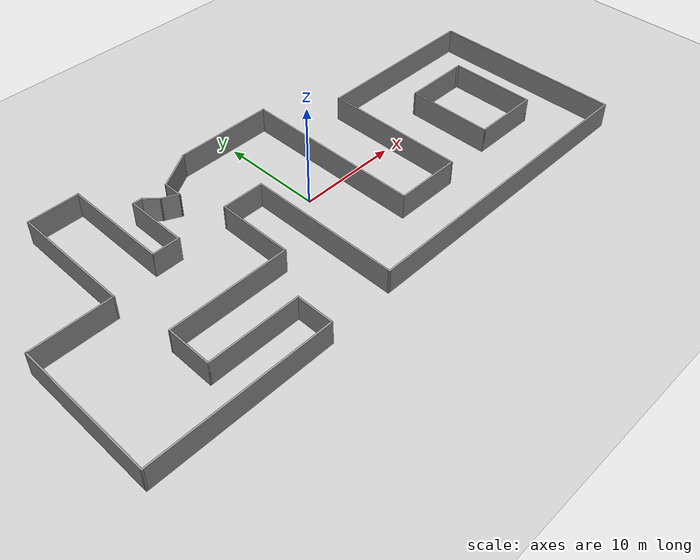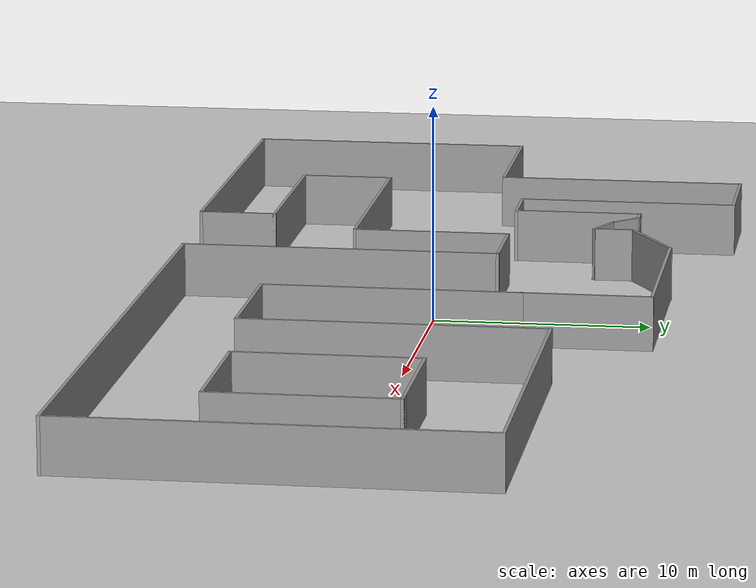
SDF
<?xml version="1.0"?>
<sdf version="1.6">
    <world name="default">
        <gui fullscreen='0'>
            <camera name='user_camera'>
                <pose>2 18 15 0 0.75 -1.7</pose>
            </camera>
        </gui>

        <gui>
            <plugin name="keyboard" filename="libKeyboardGUIPlugin.so"/>
        </gui>

        <include>
            <uri>model://sun</uri>
        </include>

        <include>
            <uri>model://ground_plane</uri>
        </include>

        <model name='Frontier'>
            <pose frame=''>0 0 0 0 0 0</pose>
            <link name='Wall_0'>
                <collision name='Wall_0_Collision'>
                    <geometry>
                        <box>
                            <size>6 0.15 2.5</size>
                        </box>
                    </geometry>
                    <pose frame=''>0 0 1.25 0 -0 0</pose>
                </collision>
                <visual name='Wall_0_Visual'>
                    <pose frame=''>0 0 1.25 0 -0 0</pose>
                    <geometry>
                        <box>
                            <size>6 0.15 2.5</size>
                        </box>
                    </geometry>
                    <material>
                        <script>
                            <uri>file://media/materials/scripts/gazebo.material</uri>
                            <name>Gazebo/Grey</name>
                        </script>
                        <ambient>1 1 1 1</ambient>
                    </material>
                    <meta>
                        <layer>0</layer>
                    </meta>
                </visual>
                <pose frame=''>-12.4007 5.45 0 0 -0 1.5708</pose>
            </link>
            <link name='Wall_1'>
                <collision name='Wall_1_Collision'>
                    <geometry>
                        <box>
                            <size>1 0.15 2.5</size>
                        </box>
                    </geometry>
                    <pose frame=''>0 0 1.25 0 -0 0</pose>
                </collision>
                <visual name='Wall_1_Visual'>
                    <pose frame=''>0 0 1.25 0 -0 0</pose>
                    <geometry>
                        <box>
                            <size>1 0.15 2.5</size>
                        </box>
                    </geometry>
                    <material>
                        <script>
                            <uri>file://media/materials/scripts/gazebo.material</uri>
                            <name>Gazebo/Grey</name>
                        </script>
                        <ambient>1 1 1 1</ambient>
                    </material>
                    <meta>
                        <layer>0</layer>
                    </meta>
                </visual>
                <pose frame=''>-11.9757 8.375 0 0 -0 0</pose>
            </link>
            <link name='Wall_10'>
                <collision name='Wall_10_Collision'>
                    <geometry>
                        <box>
                            <size>4.25 0.15 2.5</size>
                        </box>
                    </geometry>
                    <pose frame=''>0 0 1.25 0 -0 0</pose>
                </collision>
                <visual name='Wall_10_Visual'>
                    <pose frame=''>0 0 1.25 0 -0 0</pose>
                    <geometry>
                        <box>
                            <size>4.25 0.15 2.5</size>
                        </box>
                    </geometry>
                    <material>
                        <script>
                            <uri>file://media/materials/scripts/gazebo.material</uri>
                            <name>Gazebo/Grey</name>
                        </script>
                        <ambient>1 1 1 1</ambient>
                    </material>
                    <meta>
                        <layer>0</layer>
                    </meta>
                </visual>
                <pose frame=''>-7.17535 9.4 0 0 -0 0.523599</pose>
            </link>
            <link name='Wall_11'>
                <collision name='Wall_11_Collision'>
                    <geometry>
                        <box>
                            <size>9.75 0.15 2.5</size>
                        </box>
                    </geometry>
                    <pose frame=''>0 0 1.25 0 -0 0</pose>
                </collision>
                <visual name='Wall_11_Visual'>
                    <pose frame=''>0 0 1.25 0 -0 0</pose>
                    <geometry>
                        <box>
                            <size>9.75 0.15 2.5</size>
                        </box>
                    </geometry>
                    <material>
                        <script>
                            <uri>file://media/materials/scripts/gazebo.material</uri>
                            <name>Gazebo/Grey</name>
                        </script>
                        <ambient>1 1 1 1</ambient>
                    </material>
                    <meta>
                        <layer>0</layer>
                    </meta>
                </visual>
                <pose frame=''>-0.6 10.425 0 0 -0 0</pose>
            </link>
            <link name='Wall_12'>
                <collision name='Wall_12_Collision'>
                    <geometry>
                        <box>
                            <size>6 0.15 2.5</size>
                        </box>
                    </geometry>
                    <pose frame=''>0 0 1.25 0 -0 0</pose>
                </collision>
                <visual name='Wall_12_Visual'>
                    <pose frame=''>0 0 1.25 0 -0 0</pose>
                    <geometry>
                        <box>
                            <size>6 0.15 2.5</size>
                        </box>
                    </geometry>
                    <material>
                        <script>
                            <uri>file://media/materials/scripts/gazebo.material</uri>
                            <name>Gazebo/Grey</name>
                        </script>
                        <ambient>1 1 1 1</ambient>
                    </material>
                    <meta>
                        <layer>0</layer>
                    </meta>
                </visual>
                <pose frame=''>4.2 7.5 0 0 -0 -1.5708</pose>
            </link>
            <link name='Wall_13'>
                <collision name='Wall_13_Collision'>
                    <geometry>
                        <box>
                            <size>12 0.15 2.5</size>
                        </box>
                    </geometry>
                    <pose frame=''>0 0 1.25 0 -0 0</pose>
                </collision>
                <visual name='Wall_13_Visual'>
                    <pose frame=''>0 0 1.25 0 -0 0</pose>
                    <geometry>
                        <box>
                            <size>12 0.15 2.5</size>
                        </box>
                    </geometry>
                    <material>
                        <script>
                            <uri>file://media/materials/scripts/gazebo.material</uri>
                            <name>Gazebo/Grey</name>
                        </script>
                        <ambient>1 1 1 1</ambient>
                    </material>
                    <meta>
                        <layer>0</layer>
                    </meta>
                </visual>
                <pose frame=''>4.2 -1.35 0 0 -0 -1.5708</pose>
            </link>
            <link name='Wall_14'>
                <collision name='Wall_14_Collision'>
                    <geometry>
                        <box>
                            <size>6.5 0.15 2.5</size>
                        </box>
                    </geometry>
                    <pose frame=''>0 0 1.25 0 -0 0</pose>
                </collision>
                <visual name='Wall_14_Visual'>
                    <pose frame=''>0 0 1.25 0 -0 0</pose>
                    <geometry>
                        <box>
                            <size>6.5 0.15 2.5</size>
                        </box>
                    </geometry>
                    <material>
                        <script>
                            <uri>file://media/materials/scripts/gazebo.material</uri>
                            <name>Gazebo/Grey</name>
                        </script>
                        <ambient>1 1 1 1</ambient>
                    </material>
                    <meta>
                        <layer>0</layer>
                    </meta>
                </visual>
                <pose frame=''>7.375 -7.275 0 0 -0 0</pose>
            </link>
            <link name='Wall_15'>
                <collision name='Wall_15_Collision'>
                    <geometry>
                        <box>
                            <size>14 0.15 2.5</size>
                        </box>
                    </geometry>
                    <pose frame=''>0 0 1.25 0 -0 0</pose>
                </collision>
                <visual name='Wall_15_Visual'>
                    <pose frame=''>0 0 1.25 0 -0 0</pose>
                    <geometry>
                        <box>
                            <size>14 0.15 2.5</size>
                        </box>
                    </geometry>
                    <material>
                        <script>
                            <uri>file://media/materials/scripts/gazebo.material</uri>
                            <name>Gazebo/Grey</name>
                        </script>
                        <ambient>1 1 1 1</ambient>
                    </material>
                    <meta>
                        <layer>0</layer>
                    </meta>
                </visual>
                <pose frame=''>10.55 -0.35 0 0 -0 1.5708</pose>
            </link>
            <link name='Wall_16'>
                <collision name='Wall_16_Collision'>
                    <geometry>
                        <box>
                            <size>17 0.15 2.5</size>
                        </box>
                    </geometry>
                    <pose frame=''>0 0 1.25 0 -0 0</pose>
                </collision>
                <visual name='Wall_16_Visual'>
                    <pose frame=''>0 0 1.25 0 -0 0</pose>
                    <geometry>
                        <box>
                            <size>17 0.15 2.5</size>
                        </box>
                    </geometry>
                    <material>
                        <script>
                            <uri>file://media/materials/scripts/gazebo.material</uri>
                            <name>Gazebo/Grey</name>
                        </script>
                        <ambient>1 1 1 1</ambient>
                    </material>
                    <meta>
                        <layer>0</layer>
                    </meta>
                </visual>
                <pose frame=''>18.975 6.575 0 0 -0 0</pose>
            </link>
            <link name='Wall_17'>
                <collision name='Wall_17_Collision'>
                    <geometry>
                        <box>
                            <size>19 0.15 2.5</size>
                        </box>
                    </geometry>
                    <pose frame=''>0 0 1.25 0 -0 0</pose>
                </collision>
                <visual name='Wall_17_Visual'>
                    <pose frame=''>0 0 1.25 0 -0 0</pose>
                    <geometry>
                        <box>
                            <size>19 0.15 2.5</size>
                        </box>
                    </geometry>
                    <material>
                        <script>
                            <uri>file://media/materials/scripts/gazebo.material</uri>
                            <name>Gazebo/Grey</name>
                        </script>
                        <ambient>1 1 1 1</ambient>
                    </material>
                    <meta>
                        <layer>0</layer>
                    </meta>
                </visual>
                <pose frame=''>27.4 -2.85 0 0 -0 -1.5708</pose>
            </link>
            <link name='Wall_18'>
                <collision name='Wall_18_Collision'>
                    <geometry>
                        <box>
                            <size>30.75 0.15 2.5</size>
                        </box>
                    </geometry>
                    <pose frame=''>0 0 1.25 0 -0 0</pose>
                </collision>
                <visual name='Wall_18_Visual'>
                    <pose frame=''>0 0 1.25 0 -0 0</pose>
                    <geometry>
                        <box>
                            <size>30.75 0.15 2.5</size>
                        </box>
                    </geometry>
                    <material>
                        <script>
                            <uri>file://media/materials/scripts/gazebo.material</uri>
                            <name>Gazebo/Grey</name>
                        </script>
                        <ambient>1 1 1 1</ambient>
                    </material>
                    <meta>
                        <layer>0</layer>
                    </meta>
                </visual>
                <pose frame=''>12.1 -12.275 0 0 -0 3.14159</pose>
            </link>
            <link name='Wall_19'>
                <collision name='Wall_19_Collision'>
                    <geometry>
                        <box>
                            <size>15 0.15 2.5</size>
                        </box>
                    </geometry>
                    <pose frame=''>0 0 1.25 0 -0 0</pose>
                </collision>
                <visual name='Wall_19_Visual'>
                    <pose frame=''>0 0 1.25 0 -0 0</pose>
                    <geometry>
                        <box>
                            <size>15 0.15 2.5</size>
                        </box>
                    </geometry>
                    <material>
                        <script>
                            <uri>file://media/materials/scripts/gazebo.material</uri>
                            <name>Gazebo/Grey</name>
                        </script>
                        <ambient>1 1 1 1</ambient>
                    </material>
                    <meta>
                        <layer>0</layer>
                    </meta>
                </visual>
                <pose frame=''>-3.2 -4.85 0 0 -0 1.5708</pose>
            </link>
            <link name='Wall_2'>
                <collision name='Wall_2_Collision'>
                    <geometry>
                        <box>
                            <size>1.75 0.15 2.5</size>
                        </box>
                    </geometry>
                    <pose frame=''>0 0 1.25 0 -0 0</pose>
                </collision>
                <visual name='Wall_2_Visual'>
                    <pose frame=''>0 0 1.25 0 -0 0</pose>
                    <geometry>
                        <box>
                            <size>1.75 0.15 2.5</size>
                        </box>
                    </geometry>
                    <material>
                        <script>
                            <uri>file://media/materials/scripts/gazebo.material</uri>
                            <name>Gazebo/Grey</name>
                        </script>
                        <ambient>1 1 1 1</ambient>
                    </material>
                    <meta>
                        <layer>0</layer>
                    </meta>
                </visual>
                <pose frame=''>-10.985 7.80931 0 0 -0 -0.785398</pose>
            </link>
            <link name='Wall_20'>
                <collision name='Wall_20_Collision'>
                    <geometry>
                        <box>
                            <size>4.25 0.15 2.5</size>
                        </box>
                    </geometry>
                    <pose frame=''>0 0 1.25 0 -0 0</pose>
                </collision>
                <visual name='Wall_20_Visual'>
                    <pose frame=''>0 0 1.25 0 -0 0</pose>
                    <geometry>
                        <box>
                            <size>4.25 0.15 2.5</size>
                        </box>
                    </geometry>
                    <material>
                        <script>
                            <uri>file://media/materials/scripts/gazebo.material</uri>
                            <name>Gazebo/Grey</name>
                        </script>
                        <ambient>1 1 1 1</ambient>
                    </material>
                    <meta>
                        <layer>0</layer>
                    </meta>
                </visual>
                <pose frame=''>-5.25 2.575 0 0 -0 3.14159</pose>
            </link>
            <link name='Wall_21'>
                <collision name='Wall_21_Collision'>
                    <geometry>
                        <box>
                            <size>7.5 0.15 2.5</size>
                        </box>
                    </geometry>
                    <pose frame=''>0 0 1.25 0 -0 0</pose>
                </collision>
                <visual name='Wall_21_Visual'>
                    <pose frame=''>0 0 1.25 0 -0 0</pose>
                    <geometry>
                        <box>
                            <size>7.5 0.15 2.5</size>
                        </box>
                    </geometry>
                    <material>
                        <script>
                            <uri>file://media/materials/scripts/gazebo.material</uri>
                            <name>Gazebo/Grey</name>
                        </script>
                        <ambient>1 1 1 1</ambient>
                    </material>
                    <meta>
                        <layer>0</layer>
                    </meta>
                </visual>
                <pose frame=''>-7.3 -1.1 0 0 -0 -1.5708</pose>
            </link>
            <link name='Wall_22'>
                <collision name='Wall_22_Collision'>
                    <geometry>
                        <box>
                            <size>11.75 0.15 2.5</size>
                        </box>
                    </geometry>
                    <pose frame=''>0 0 1.25 0 -0 0</pose>
                </collision>
                <visual name='Wall_22_Visual'>
                    <pose frame=''>0 0 1.25 0 -0 0</pose>
                    <geometry>
                        <box>
                            <size>11.75 0.15 2.5</size>
                        </box>
                    </geometry>
                    <material>
                        <script>
                            <uri>file://media/materials/scripts/gazebo.material</uri>
                            <name>Gazebo/Grey</name>
                        </script>
                        <ambient>1 1 1 1</ambient>
                    </material>
                    <meta>
                        <layer>0</layer>
                    </meta>
                </visual>
                <pose frame=''>-13.1 -4.775 0 0 -0 3.14159</pose>
            </link>
            <link name='Wall_23'>
                <collision name='Wall_23_Collision'>
                    <geometry>
                        <box>
                            <size>4.5 0.15 2.5</size>
                        </box>
                    </geometry>
                    <pose frame=''>0 0 1.25 0 -0 0</pose>
                </collision>
                <visual name='Wall_23_Visual'>
                    <pose frame=''>0 0 1.25 0 -0 0</pose>
                    <geometry>
                        <box>
                            <size>4.5 0.15 2.5</size>
                        </box>
                    </geometry>
                    <material>
                        <script>
                            <uri>file://media/materials/scripts/gazebo.material</uri>
                            <name>Gazebo/Grey</name>
                        </script>
                        <ambient>1 1 1 1</ambient>
                    </material>
                    <meta>
                        <layer>0</layer>
                    </meta>
                </visual>
                <pose frame=''>-18.9 -6.95 0 0 -0 -1.5708</pose>
            </link>
            <link name='Wall_24'>
                <collision name='Wall_24_Collision'>
                    <geometry>
                        <box>
                            <size>9 0.15 2.5</size>
                        </box>
                    </geometry>
                    <pose frame=''>0 0 1.25 0 -0 0</pose>
                </collision>
                <visual name='Wall_24_Visual'>
                    <pose frame=''>0 0 1.25 0 -0 0</pose>
                    <geometry>
                        <box>
                            <size>9 0.15 2.5</size>
                        </box>
                    </geometry>
                    <material>
                        <script>
                            <uri>file://media/materials/scripts/gazebo.material</uri>
                            <name>Gazebo/Grey</name>
                        </script>
                        <ambient>1 1 1 1</ambient>
                    </material>
                    <meta>
                        <layer>0</layer>
                    </meta>
                </visual>
                <pose frame=''>-14.475 -9.125 0 0 -0 0</pose>
            </link>
            <link name='Wall_25'>
                <collision name='Wall_25_Collision'>
                    <geometry>
                        <box>
                            <size>3.75 0.15 2.5</size>
                        </box>
                    </geometry>
                    <pose frame=''>0 0 1.25 0 -0 0</pose>
                </collision>
                <visual name='Wall_25_Visual'>
                    <pose frame=''>0 0 1.25 0 -0 0</pose>
                    <geometry>
                        <box>
                            <size>3.75 0.15 2.5</size>
                        </box>
                    </geometry>
                    <material>
                        <script>
                            <uri>file://media/materials/scripts/gazebo.material</uri>
                            <name>Gazebo/Grey</name>
                        </script>
                        <ambient>1 1 1 1</ambient>
                    </material>
                    <meta>
                        <layer>0</layer>
                    </meta>
                </visual>
                <pose frame=''>-10.05 -10.925 0 0 -0 -1.5708</pose>
            </link>
            <link name='Wall_26'>
                <collision name='Wall_26_Collision'>
                    <geometry>
                        <box>
                            <size>17.5 0.15 2.5</size>
                        </box>
                    </geometry>
                    <pose frame=''>0 0 1.25 0 -0 0</pose>
                </collision>
                <visual name='Wall_26_Visual'>
                    <pose frame=''>0 0 1.25 0 -0 0</pose>
                    <geometry>
                        <box>
                            <size>17.5 0.15 2.5</size>
                        </box>
                    </geometry>
                    <material>
                        <script>
                            <uri>file://media/materials/scripts/gazebo.material</uri>
                            <name>Gazebo/Grey</name>
                        </script>
                        <ambient>1 1 1 1</ambient>
                    </material>
                    <meta>
                        <layer>0</layer>
                    </meta>
                </visual>
                <pose frame=''>-18.725 -12.725 0 0 -0 3.14159</pose>
            </link>
            <link name='Wall_27'>
                <collision name='Wall_27_Collision'>
                    <geometry>
                        <box>
                            <size>13.75 0.15 2.5</size>
                        </box>
                    </geometry>
                    <pose frame=''>0 0 1.25 0 -0 0</pose>
                </collision>
                <visual name='Wall_27_Visual'>
                    <pose frame=''>0 0 1.25 0 -0 0</pose>
                    <geometry>
                        <box>
                            <size>13.75 0.15 2.5</size>
                        </box>
                    </geometry>
                    <material>
                        <script>
                            <uri>file://media/materials/scripts/gazebo.material</uri>
                            <name>Gazebo/Grey</name>
                        </script>
                        <ambient>1 1 1 1</ambient>
                    </material>
                    <meta>
                        <layer>0</layer>
                    </meta>
                </visual>
                <pose frame=''>-27.4 -5.925 0 0 -0 1.5708</pose>
            </link>
            <link name='Wall_28'>
                <collision name='Wall_28_Collision'>
                    <geometry>
                        <box>
                            <size>7.75 0.15 2.5</size>
                        </box>
                    </geometry>
                    <pose frame=''>0 0 1.25 0 -0 0</pose>
                </collision>
                <visual name='Wall_28_Visual'>
                    <pose frame=''>0 0 1.25 0 -0 0</pose>
                    <geometry>
                        <box>
                            <size>7.75 0.15 2.5</size>
                        </box>
                    </geometry>
                    <material>
                        <script>
                            <uri>file://media/materials/scripts/gazebo.material</uri>
                            <name>Gazebo/Grey</name>
                        </script>
                        <ambient>1 1 1 1</ambient>
                    </material>
                    <meta>
                        <layer>0</layer>
                    </meta>
                </visual>
                <pose frame=''>-23.6 0.875 0 0 -0 0</pose>
            </link>
            <link name='Wall_29'>
                <collision name='Wall_29_Collision'>
                    <geometry>
                        <box>
                            <size>12 0.15 2.5</size>
                        </box>
                    </geometry>
                    <pose frame=''>0 0 1.25 0 -0 0</pose>
                </collision>
                <visual name='Wall_29_Visual'>
                    <pose frame=''>0 0 1.25 0 -0 0</pose>
                    <geometry>
                        <box>
                            <size>12 0.15 2.5</size>
                        </box>
                    </geometry>
                    <material>
                        <script>
                            <uri>file://media/materials/scripts/gazebo.material</uri>
                            <name>Gazebo/Grey</name>
                        </script>
                        <ambient>1 1 1 1</ambient>
                    </material>
                    <meta>
                        <layer>0</layer>
                    </meta>
                </visual>
                <pose frame=''>-19.8 6.8 0 0 -0 1.5708</pose>
            </link>
            <link name='Wall_3'>
                <collision name='Wall_3_Collision'>
                    <geometry>
                        <box>
                            <size>1.78502 0.15 2.5</size>
                        </box>
                    </geometry>
                    <pose frame=''>0 0 1.25 0 -0 0</pose>
                </collision>
                <visual name='Wall_3_Visual'>
                    <pose frame=''>0 0 1.25 0 -0 0</pose>
                    <geometry>
                        <box>
                            <size>1.78502 0.15 2.5</size>
                        </box>
                    </geometry>
                    <material>
                        <script>
                            <uri>file://media/materials/scripts/gazebo.material</uri>
                            <name>Gazebo/Grey</name>
                        </script>
                        <ambient>1 1 1 1</ambient>
                    </material>
                    <meta>
                        <layer>0</layer>
                    </meta>
                </visual>
                <pose frame=''>-9.68502 6.88431 0 0 -0 -0.455067</pose>
            </link>
            <link name='Wall_30'>
                <collision name='Wall_30_Collision'>
                    <geometry>
                        <box>
                            <size>5 0.15 2.5</size>
                        </box>
                    </geometry>
                    <pose frame=''>0 0 1.25 0 -0 0</pose>
                </collision>
                <visual name='Wall_30_Visual'>
                    <pose frame=''>0 0 1.25 0 -0 0</pose>
                    <geometry>
                        <box>
                            <size>5 0.15 2.5</size>
                        </box>
                    </geometry>
                    <material>
                        <script>
                            <uri>file://media/materials/scripts/gazebo.material</uri>
                            <name>Gazebo/Grey</name>
                        </script>
                        <ambient>1 1 1 1</ambient>
                    </material>
                    <meta>
                        <layer>0</layer>
                    </meta>
                </visual>
                <pose frame=''>-17.375 12.725 0 0 -0 0</pose>
            </link>
            <link name='Wall_31'>
                <collision name='Wall_31_Collision'>
                    <geometry>
                        <box>
                            <size>10.5 0.15 2.5</size>
                        </box>
                    </geometry>
                    <pose frame=''>0 0 1.25 0 -0 0</pose>
                </collision>
                <visual name='Wall_31_Visual'>
                    <pose frame=''>0 0 1.25 0 -0 0</pose>
                    <geometry>
                        <box>
                            <size>10.5 0.15 2.5</size>
                        </box>
                    </geometry>
                    <material>
                        <script>
                            <uri>file://media/materials/scripts/gazebo.material</uri>
                            <name>Gazebo/Grey</name>
                        </script>
                        <ambient>1 1 1 1</ambient>
                    </material>
                    <meta>
                        <layer>0</layer>
                    </meta>
                </visual>
                <pose frame=''>-14.95 7.55 0 0 -0 -1.5708</pose>
            </link>
            <link name='Wall_32'>
                <collision name='Wall_32_Collision'>
                    <geometry>
                        <box>
                            <size>2.75 0.15 2.5</size>
                        </box>
                    </geometry>
                    <pose frame=''>0 0 1.25 0 -0 0</pose>
                </collision>
                <visual name='Wall_32_Visual'>
                    <pose frame=''>0 0 1.25 0 -0 0</pose>
                    <geometry>
                        <box>
                            <size>2.75 0.15 2.5</size>
                        </box>
                    </geometry>
                    <material>
                        <script>
                            <uri>file://media/materials/scripts/gazebo.material</uri>
                            <name>Gazebo/Grey</name>
                        </script>
                        <ambient>1 1 1 1</ambient>
                    </material>
                    <meta>
                        <layer>0</layer>
                    </meta>
                </visual>
                <pose frame=''>-13.65 2.375 0 0 -0 0</pose>
            </link>
            <link name='Wall_37'>
                <collision name='Wall_37_Collision'>
                    <geometry>
                        <box>
                            <size>6.25 0.15 2.5</size>
                        </box>
                    </geometry>
                    <pose frame=''>0 0 1.25 0 -0 0</pose>
                </collision>
                <visual name='Wall_37_Visual'>
                    <pose frame=''>0 0 1.25 0 -0 0</pose>
                    <geometry>
                        <box>
                            <size>6.25 0.15 2.5</size>
                        </box>
                    </geometry>
                    <material>
                        <script>
                            <uri>file://media/materials/scripts/gazebo.material</uri>
                            <name>Gazebo/Grey</name>
                        </script>
                        <ambient>1 1 1 1</ambient>
                    </material>
                    <meta>
                        <layer>0</layer>
                    </meta>
                </visual>
                <pose frame=''>19.3304 1.86165 0 0 -0 3.14159</pose>
            </link>
            <link name='Wall_38'>
                <collision name='Wall_38_Collision'>
                    <geometry>
                        <box>
                            <size>8.5 0.15 2.5</size>
                        </box>
                    </geometry>
                    <pose frame=''>0 0 1.25 0 -0 0</pose>
                </collision>
                <visual name='Wall_38_Visual'>
                    <pose frame=''>0 0 1.25 0 -0 0</pose>
                    <geometry>
                        <box>
                            <size>8.5 0.15 2.5</size>
                        </box>
                    </geometry>
                    <material>
                        <script>
                            <uri>file://media/materials/scripts/gazebo.material</uri>
                            <name>Gazebo/Grey</name>
                        </script>
                        <ambient>1 1 1 1</ambient>
                    </material>
                    <meta>
                        <layer>0</layer>
                    </meta>
                </visual>
                <pose frame=''>16.2804 -2.31335 0 0 -0 -1.5708</pose>
            </link>
            <link name='Wall_39'>
                <collision name='Wall_39_Collision'>
                    <geometry>
                        <box>
                            <size>6.75 0.15 2.5</size>
                        </box>
                    </geometry>
                    <pose frame=''>0 0 1.25 0 -0 0</pose>
                </collision>
                <visual name='Wall_39_Visual'>
                    <pose frame=''>0 0 1.25 0 -0 0</pose>
                    <geometry>
                        <box>
                            <size>6.75 0.15 2.5</size>
                        </box>
                    </geometry>
                    <material>
                        <script>
                            <uri>file://media/materials/scripts/gazebo.material</uri>
                            <name>Gazebo/Grey</name>
                        </script>
                        <ambient>1 1 1 1</ambient>
                    </material>
                    <meta>
                        <layer>0</layer>
                    </meta>
                </visual>
                <pose frame=''>19.5804 -6.48835 0 0 -0 0</pose>
            </link>
            <link name='Wall_4'>
                <collision name='Wall_4_Collision'>
                    <geometry>
                        <box>
                            <size>2 0.15 2.5</size>
                        </box>
                    </geometry>
                    <pose frame=''>0 0 1.25 0 -0 0</pose>
                </collision>
                <visual name='Wall_4_Visual'>
                    <pose frame=''>0 0 1.25 0 -0 0</pose>
                    <geometry>
                        <box>
                            <size>2 0.15 2.5</size>
                        </box>
                    </geometry>
                    <material>
                        <script>
                            <uri>file://media/materials/scripts/gazebo.material</uri>
                            <name>Gazebo/Grey</name>
                        </script>
                        <ambient>1 1 1 1</ambient>
                    </material>
                    <meta>
                        <layer>0</layer>
                    </meta>
                </visual>
                <pose frame=''>-8.9507 7.45 0 0 -0 1.5708</pose>
            </link>
            <link name='Wall_40'>
                <collision name='Wall_40_Collision'>
                    <geometry>
                        <box>
                            <size>8.5 0.15 2.5</size>
                        </box>
                    </geometry>
                    <pose frame=''>0 0 1.25 0 -0 0</pose>
                </collision>
                <visual name='Wall_40_Visual'>
                    <pose frame=''>0 0 1.25 0 -0 0</pose>
                    <geometry>
                        <box>
                            <size>8.5 0.15 2.5</size>
                        </box>
                    </geometry>
                    <material>
                        <script>
                            <uri>file://media/materials/scripts/gazebo.material</uri>
                            <name>Gazebo/Grey</name>
                        </script>
                        <ambient>1 1 1 1</ambient>
                    </material>
                    <meta>
                        <layer>0</layer>
                    </meta>
                </visual>
                <pose frame=''>22.8804 -2.31335 0 0 -0 1.5708</pose>
            </link>
            <link name='Wall_41'>
                <collision name='Wall_41_Collision'>
                    <geometry>
                        <box>
                            <size>0.65 0.15 2.5</size>
                        </box>
                    </geometry>
                    <pose frame=''>0 0 1.25 0 -0 0</pose>
                </collision>
                <visual name='Wall_41_Visual'>
                    <pose frame=''>0 0 1.25 0 -0 0</pose>
                    <geometry>
                        <box>
                            <size>0.65 0.15 2.5</size>
                        </box>
                    </geometry>
                    <material>
                        <script>
                            <uri>file://media/materials/scripts/gazebo.material</uri>
                            <name>Gazebo/Grey</name>
                        </script>
                        <ambient>1 1 1 1</ambient>
                    </material>
                    <meta>
                        <layer>0</layer>
                    </meta>
                </visual>
                <pose frame=''>22.6304 1.86165 0 0 -0 3.14159</pose>
            </link>
            <static>1</static>
        </model>
    </world>
</sdf>
